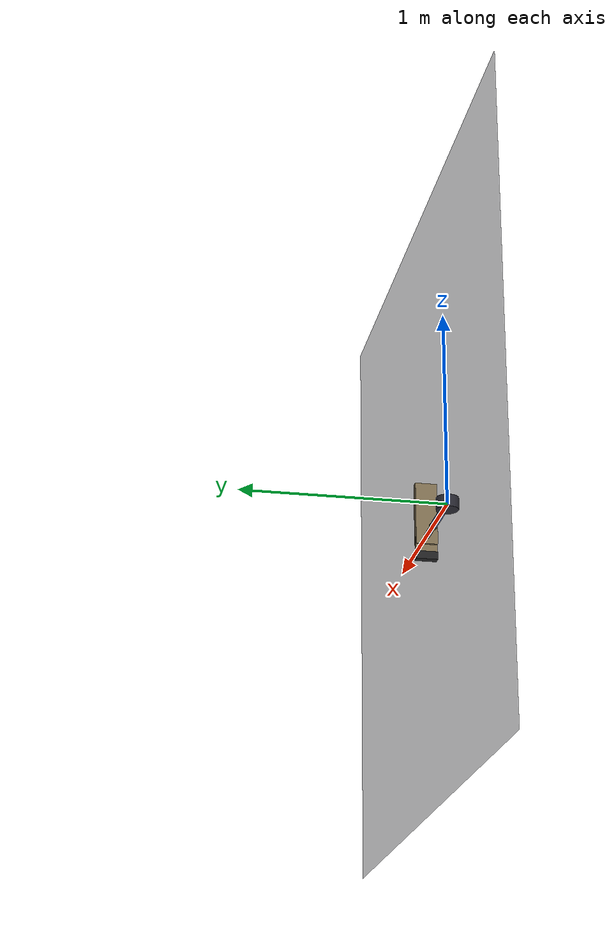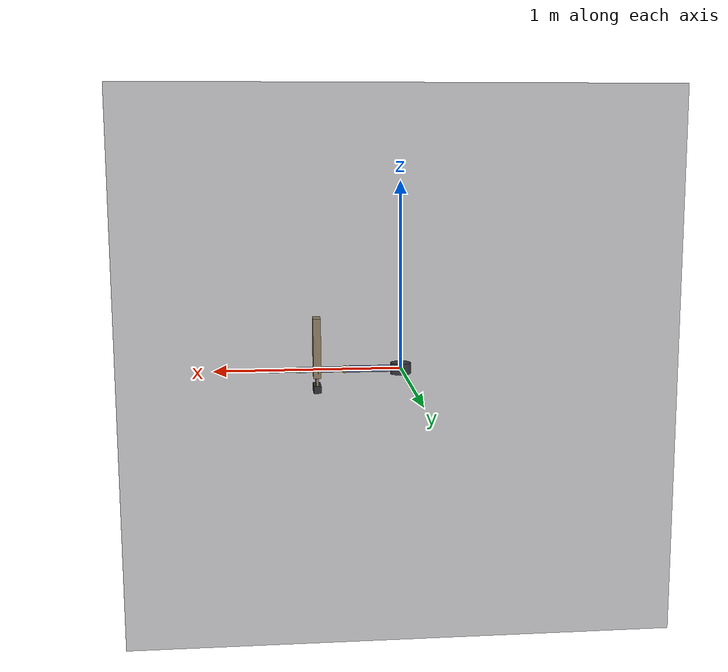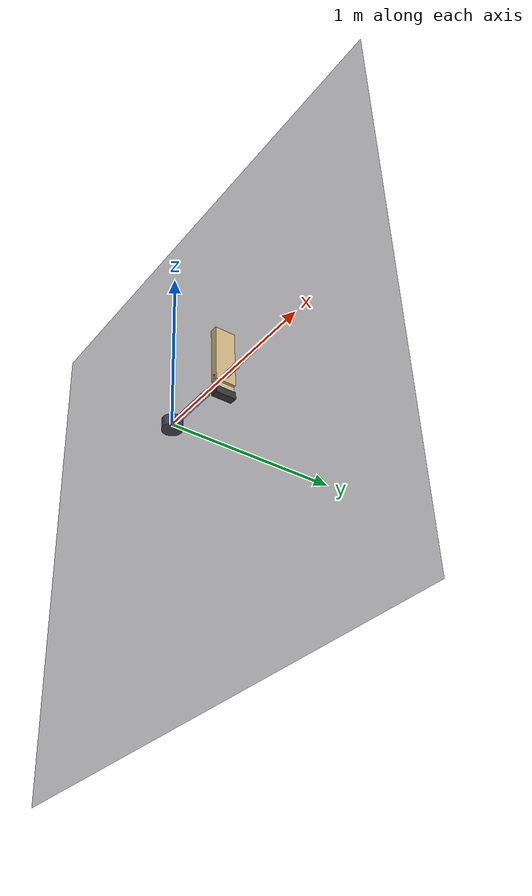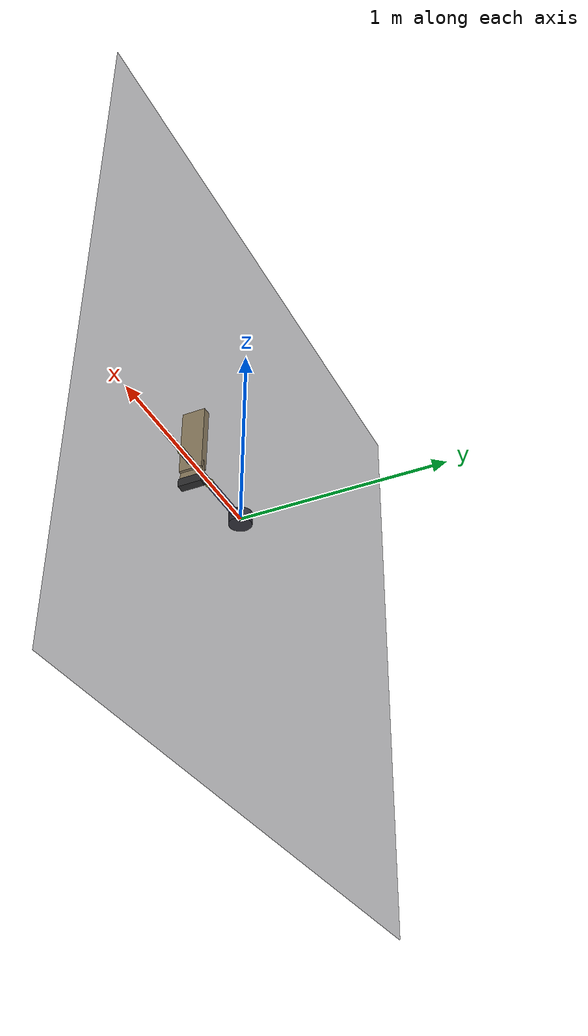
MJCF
<mujoco model="chopstick_crane">

  <option gravity="0 0 -9.81" timestep="0.002" integrator="RK4"/>
  <compiler angle="degree" autolimits="true"/>

  <visual>
    <global offwidth="1280" offheight="720"/>
  </visual>

  <!-- ────────── Defaults ────────── -->
  <default>
    <joint damping="0.05" armature="0.01" limited="true"/>
    <geom condim="3" friction="0.8 0.02 0.001"
          solimp="0.95 0.99 0.001 0.5 2" solref="0.01 1"/>
  </default>

  <!-- ────────── Assets ────────── -->
  <asset>
    <texture type="skybox" builtin="gradient"
             rgb1="0.18 0.18 0.25" rgb2="0.05 0.05 0.08"
             width="512" height="512"/>
    <texture name="grid" type="2d" builtin="checker"
             rgb1="0.18 0.18 0.20" rgb2="0.25 0.25 0.28"
             width="512" height="512" mark="cross" markrgb="0.3 0.3 0.4"/>
    <material name="grid_mat" texture="grid" texrepeat="4 4"
              reflectance="0.1" rgba="1 1 1 0.4"/>
    <material name="link_mat"  rgba="0.45 0.55 0.85 1"/>
    <material name="joint_mat" rgba="0.85 0.85 0.35 1"/>
    <material name="pen_mat"   rgba="0.95 0.15 0.15 1"/>
    <material name="board_mat" rgba="0.80 0.70 0.50 1"/>
    <material name="hinge_mat" rgba="0.35 0.35 0.35 1"/>
    <material name="target_mat" rgba="0.10 0.85 0.30 1"/>
  </asset>

  <!-- ────────── World Body ────────── -->
  <worldbody>

    <!-- Background grid for visual reference (no collision) -->
    <geom name="bg_grid" type="plane" size="1.5 1.5 0.01"
          pos="0 0.12 0" euler="90 0 0"
          material="grid_mat" contype="0" conaffinity="0"/>

    <!-- Lights -->
    <light directional="true" diffuse="0.8 0.8 0.8" specular="0.2 0.2 0.2" pos="0 0 3" dir="0 0 -1"/>

    <!-- Cameras -->
    <camera name="cam_side" pos="0.3 -0.8 0.15" xyaxes="1 0 0 0 0 1"/>
    <camera name="cam_top" pos="0.3 0.0 0.8" xyaxes="1 0 0 0 1 0"/>
    <camera name="iso_cam" pos="0.8 -1.2 0.3" mode="targetbody" target="board"/>
    <camera name="cam_front" pos="-0.2 -0.4 0.15" mode="targetbody" target="board"/>

    <!-- Target Marker Mocap -->
    <body name="target_mocap" mocap="true" pos="0 0 0">
        <geom name="target_marker" type="sphere" size="0.008" rgba="0 1 0 1" contype="0" conaffinity="0"/>
    </body>

    <!-- ═══════════ ARM ═══════════ -->
    <body name="arm_base" pos="0 0 0">
      <!-- Base cylinder -->
      <geom name="g_base" type="cylinder" size="0.055 0.030"
            rgba="0.25 0.25 0.30 1" contype="0" conaffinity="0"/>

      <!-- JOINT 1 — Shoulder (rotates in x-z plane, axis = y) -->
      <joint name="j1" type="hinge" axis="0 1 0" pos="0 0 0"
             range="-180 180"/>

      <!-- Link-1 body -->
      <body name="link1" pos="0 0 0">
        <geom name="g_link1" type="capsule"
              fromto="0 0 0  0.30 0 0" size="0.018"
              material="link_mat" contype="0" conaffinity="0"/>
        <!-- Joint marker -->
        <geom name="gj_j1" type="sphere" size="0.024" pos="0 0 0"
              material="joint_mat" contype="0" conaffinity="0"/>

        <!-- JOINT 2 — Elbow -->
        <body name="j2_body" pos="0.30 0 0">
          <joint name="j2" type="hinge" axis="0 1 0" pos="0 0 0"
                 range="-175 175"/>

          <!-- Link-2 body -->
          <body name="link2" pos="0 0 0">
            <geom name="g_link2" type="capsule"
                  fromto="0 0 0  0.25 0 0" size="0.015"
                  material="link_mat" contype="0" conaffinity="0"/>
            <geom name="gj_j2" type="sphere" size="0.020" pos="0 0 0"
                  material="joint_mat" contype="0" conaffinity="0"/>

            <!-- JOINT 3 — Wrist -->
            <body name="j3_body" pos="0.25 0 0">
              <joint name="j3" type="hinge" axis="0 1 0" pos="0 0 0"
                     range="-175 175"/>

              <!-- Link-3 body (pen holder) -->
              <body name="link3" pos="0 0 0">
                <geom name="g_link3" type="capsule"
                      fromto="0 0 0  0.15 0 0" size="0.012"
                      material="link_mat" contype="0" conaffinity="0"/>
                <geom name="gj_j3" type="sphere" size="0.017" pos="0 0 0"
                      material="joint_mat" contype="0" conaffinity="0"/>

                <!-- Pen tip — the contact sphere -->
                <body name="pen_tip" pos="0.15 0 0">
                  <geom name="pen_sphere" type="sphere" size="0.009"
                        material="pen_mat" contype="1" conaffinity="2"
                        friction="0 0 0"
                        mass="0.005"/>
                  <!-- Site used for sensor measurements and FK verification -->
                  <site name="tip_site" pos="0 0 0" size="0.006" rgba="1 0 0 1"/>
                </body>

              </body>
            </body>
          </body>
        </body>
      </body>
    </body>

    <!--
      Vertical Wall Mount (Hinge at bottom)
      Hinge located at (0.45, 0, 0.0) matching diagram O-level.
      Rotated -90 degrees around Y so the board points straight UP.
    -->
    <body name="board_mount" pos="0.45 0 0.0" euler="0 -90 0">
      <!-- Fixed pivot visible marker -->
      <geom name="g_pivot" type="cylinder" size="0.003 0.030"
            euler="90 0 0" material="hinge_mat"
            contype="0" conaffinity="0"/>

      <!-- Board body — passive hinge -->
      <body name="board" pos="0 0 0">
        <joint name="board_hinge" type="hinge" axis="0 1 0" pos="0 0 0"
               range="-30 30"
               stiffness="3.0" damping="0.3" ref="0"/>

        <!--
          Main writing surface.
          Extends from -0.04m (left of hinge) to +0.28m (right of hinge).
          Contact geom: pen_sphere contacts board_surface.
        -->
        <geom name="board_surface" type="box"
              size="0.160 0.055 0.020"
              pos="0.120 0 0"
              material="board_mat"
              contype="2" conaffinity="1"
              friction="0 0 0"
              mass="0.25"/>

        <!-- Small stub behind hinge for realism -->
        <geom name="board_back" type="box"
              size="0.040 0.055 0.007"
              pos="-0.040 0 0"
              material="board_mat"
              contype="2" conaffinity="1"
              mass="0.05"/>

        <!-- Counterweight to make board a stable pendulum -->
        <geom name="counterweight" type="box"
              size="0.02 0.055 0.02"
              pos="-0.100 0 0"
              rgba="0.2 0.2 0.2 1"
              contype="0" conaffinity="0"
              mass="1.0"/>

        <!-- Sites for measurement -->
        <site name="board_center"  pos="0.120 0 0.007" size="0.005"/>
        <site name="hinge_site"    pos="0     0 0"     size="0.005"/>
      </body>
    </body>

  </worldbody>

  <!-- ════════════ ACTUATORS ════════════ -->
  <actuator>
    <position name="act_j1" joint="j1" kp="250" kv="18"
              forcelimited="true" forcerange="-50 50"/>
    <position name="act_j2" joint="j2" kp="220" kv="15"
              forcelimited="true" forcerange="-40 40"/>
    <position name="act_j3" joint="j3" kp="150" kv="12"
              forcelimited="true" forcerange="-30 30"/>
  </actuator>

  <!-- ════════════ SENSORS ════════════ -->
  <sensor>
    <!-- Joint positions -->
    <jointpos  name="s_j1"      joint="j1"/>
    <jointpos  name="s_j2"      joint="j2"/>
    <jointpos  name="s_j3"      joint="j3"/>
    <!-- Board state -->
    <jointpos  name="s_phi"     joint="board_hinge"/>
    <jointvel  name="s_phi_dot" joint="board_hinge"/>
    <!-- Pen tip world position [x, y, z] -->
    <framepos  name="s_tip_pos" objtype="site" objname="tip_site"/>
    <!-- Touch / contact indicator at pen tip -->
    <touch     name="s_touch"   site="tip_site"/>
    <!-- Board center position [x, y, z] -->
    <framepos  name="s_board_pos" objtype="site" objname="board_center"/>
  </sensor>

</mujoco>
